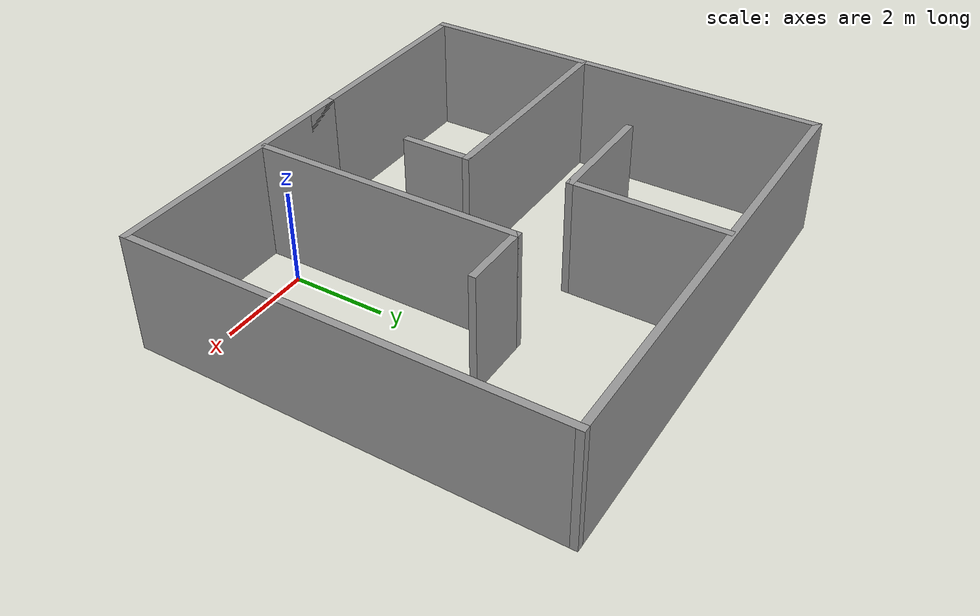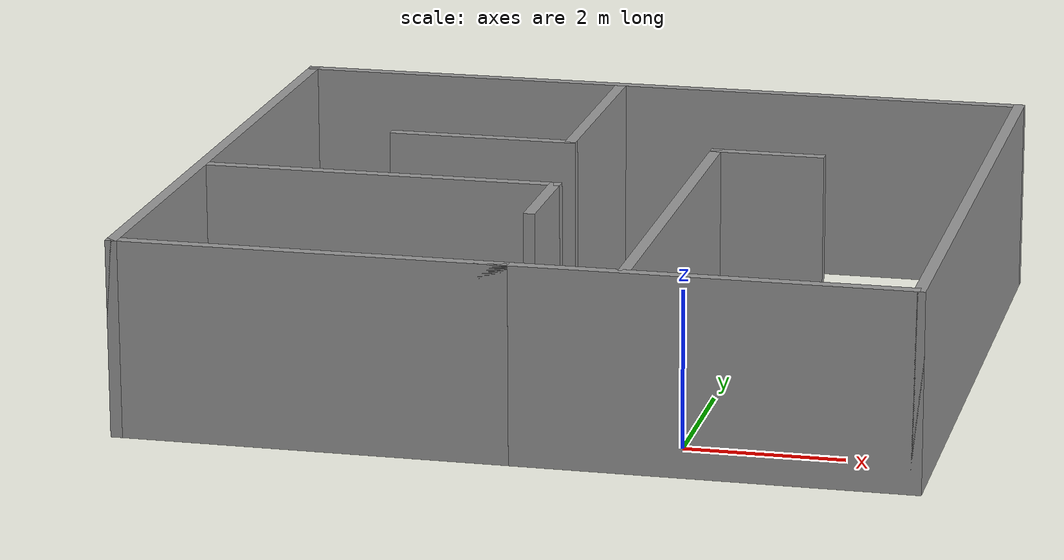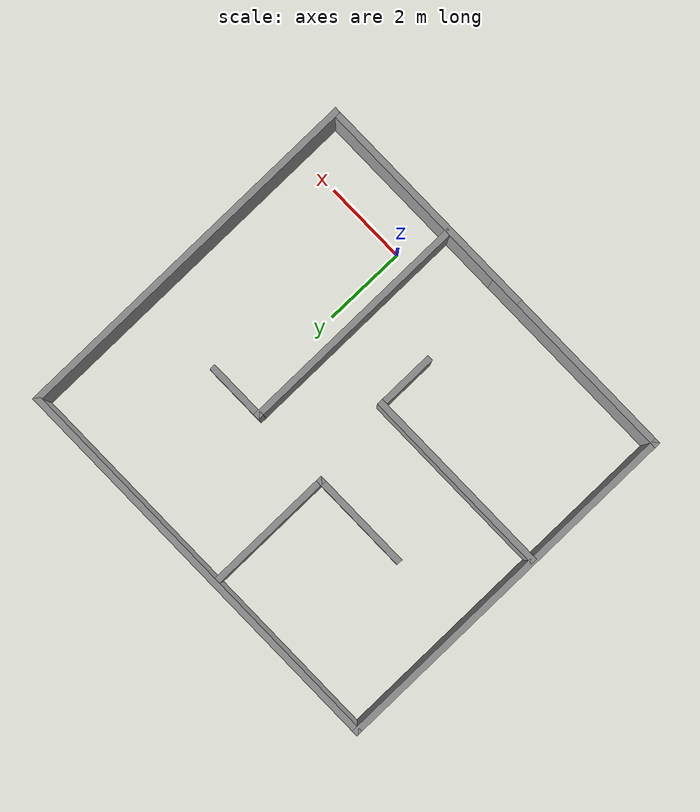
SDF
<?xml version='1.0'?>
<sdf version='1.7'>
  <model name='room'>
    <pose>-1.915 3.405 0 0 -0 0</pose>
    <link name='Wall_0'>
      <collision name='Wall_0_Collision'>
        <geometry>
          <box>
            <size>5.75 0.15 2.5</size>
          </box>
        </geometry>
        <pose>0 0 1.25 0 -0 0</pose>
      </collision>
      <visual name='Wall_0_Visual'>
        <pose>0 0 1.25 0 -0 0</pose>
        <geometry>
          <box>
            <size>5.75 0.15 2.5</size>
          </box>
        </geometry>
        <material>
          <script>
            <uri>file://media/materials/scripts/gazebo.material</uri>
            <name>Gazebo/Grey</name>
          </script>
          <ambient>1 1 1 1</ambient>
        </material>
        <meta>
          <layer>0</layer>
        </meta>
      </visual>
      <pose>2.125 -4.425 0 0 -0 0</pose>
    </link>
    <link name='Wall_1'>
      <collision name='Wall_1_Collision'>
        <geometry>
          <box>
            <size>9 0.15 2.5</size>
          </box>
        </geometry>
        <pose>0 0 1.25 0 -0 0</pose>
      </collision>
      <visual name='Wall_1_Visual'>
        <pose>0 0 1.25 0 -0 0</pose>
        <geometry>
          <box>
            <size>9 0.15 2.5</size>
          </box>
        </geometry>
        <material>
          <script>
            <uri>file://media/materials/scripts/gazebo.material</uri>
            <name>Gazebo/Grey</name>
          </script>
          <ambient>1 1 1 1</ambient>
        </material>
        <meta>
          <layer>0</layer>
        </meta>
      </visual>
      <pose>4.925 -0 0 0 -0 1.5708</pose>
    </link>
    <link name='Wall_10'>
      <collision name='Wall_10_Collision'>
        <geometry>
          <box>
            <size>1.5 0.15 2.5</size>
          </box>
        </geometry>
        <pose>0 0 1.25 0 -0 0</pose>
      </collision>
      <visual name='Wall_10_Visual'>
        <pose>0 0 1.25 0 -0 0</pose>
        <geometry>
          <box>
            <size>1.5 0.15 2.5</size>
          </box>
        </geometry>
        <material>
          <script>
            <uri>file://media/materials/scripts/gazebo.material</uri>
            <name>Gazebo/Grey</name>
          </script>
          <ambient>1 1 1 1</ambient>
        </material>
        <meta>
          <layer>0</layer>
        </meta>
      </visual>
      <pose>-0.274674 -1.47923 0 0 -0 -1.5708</pose>
    </link>
    <link name='Wall_12'>
      <collision name='Wall_12_Collision'>
        <geometry>
          <box>
            <size>5.75 0.15 2.5</size>
          </box>
        </geometry>
        <pose>0 0 1.25 0 -0 0</pose>
      </collision>
      <visual name='Wall_12_Visual'>
        <pose>0 0 1.25 0 -0 0</pose>
        <geometry>
          <box>
            <size>5.75 0.15 2.5</size>
          </box>
        </geometry>
        <material>
          <script>
            <uri>file://media/materials/scripts/gazebo.material</uri>
            <name>Gazebo/Grey</name>
          </script>
          <ambient>1 1 1 1</ambient>
        </material>
        <meta>
          <layer>0</layer>
        </meta>
      </visual>
      <pose>1.39594 -1.54099 0 0 -0 -1.5708</pose>
    </link>
    <link name='Wall_14'>
      <collision name='Wall_14_Collision'>
        <geometry>
          <box>
            <size>1.5 0.15 2.5</size>
          </box>
        </geometry>
        <pose>0 0 1.25 0 -0 0</pose>
      </collision>
      <visual name='Wall_14_Visual'>
        <pose>0 0 1.25 0 -0 0</pose>
        <geometry>
          <box>
            <size>1.5 0.15 2.5</size>
          </box>
        </geometry>
        <material>
          <script>
            <uri>file://media/materials/scripts/gazebo.material</uri>
            <name>Gazebo/Grey</name>
          </script>
          <ambient>1 1 1 1</ambient>
        </material>
        <meta>
          <layer>0</layer>
        </meta>
      </visual>
      <pose>2.07094 1.25901 0 0 -0 0</pose>
    </link>
    <link name='Wall_2'>
      <collision name='Wall_2_Collision'>
        <geometry>
          <box>
            <size>10 0.15 2.5</size>
          </box>
        </geometry>
        <pose>0 0 1.25 0 -0 0</pose>
      </collision>
      <visual name='Wall_2_Visual'>
        <pose>0 0 1.25 0 -0 0</pose>
        <geometry>
          <box>
            <size>10 0.15 2.5</size>
          </box>
        </geometry>
        <material>
          <script>
            <uri>file://media/materials/scripts/gazebo.material</uri>
            <name>Gazebo/Grey</name>
          </script>
          <ambient>1 1 1 1</ambient>
        </material>
        <meta>
          <layer>0</layer>
        </meta>
      </visual>
      <pose>0 4.425 0 0 -0 3.14159</pose>
    </link>
    <link name='Wall_3'>
      <collision name='Wall_3_Collision'>
        <geometry>
          <box>
            <size>9 0.15 2.5</size>
          </box>
        </geometry>
        <pose>0 0 1.25 0 -0 0</pose>
      </collision>
      <visual name='Wall_3_Visual'>
        <pose>0 0 1.25 0 -0 0</pose>
        <geometry>
          <box>
            <size>9 0.15 2.5</size>
          </box>
        </geometry>
        <material>
          <script>
            <uri>file://media/materials/scripts/gazebo.material</uri>
            <name>Gazebo/Grey</name>
          </script>
          <ambient>1 1 1 1</ambient>
        </material>
        <meta>
          <layer>0</layer>
        </meta>
      </visual>
      <pose>-4.925 -0 0 0 -0 -1.5708</pose>
    </link>
    <link name='Wall_4'>
      <collision name='Wall_4_Collision'>
        <geometry>
          <box>
            <size>5 0.15 2.5</size>
          </box>
        </geometry>
        <pose>0 0 1.25 0 -0 0</pose>
      </collision>
      <visual name='Wall_4_Visual'>
        <pose>0 0 1.25 0 -0 0</pose>
        <geometry>
          <box>
            <size>5 0.15 2.5</size>
          </box>
        </geometry>
        <material>
          <script>
            <uri>file://media/materials/scripts/gazebo.material</uri>
            <name>Gazebo/Grey</name>
          </script>
          <ambient>1 1 1 1</ambient>
        </material>
        <meta>
          <layer>0</layer>
        </meta>
      </visual>
      <pose>-2.5 -4.425 0 0 -0 0</pose>
    </link>
    <link name='Wall_6'>
      <collision name='Wall_6_Collision'>
        <geometry>
          <box>
            <size>3.25 0.15 2.5</size>
          </box>
        </geometry>
        <pose>0 0 1.25 0 -0 0</pose>
      </collision>
      <visual name='Wall_6_Visual'>
        <pose>0 0 1.25 0 -0 0</pose>
        <geometry>
          <box>
            <size>3.25 0.15 2.5</size>
          </box>
        </geometry>
        <material>
          <script>
            <uri>file://media/materials/scripts/gazebo.material</uri>
            <name>Gazebo/Grey</name>
          </script>
          <ambient>1 1 1 1</ambient>
        </material>
        <meta>
          <layer>0</layer>
        </meta>
      </visual>
      <pose>-0.545927 2.82409 0 0 -0 -1.5708</pose>
    </link>
    <link name='Wall_7'>
      <collision name='Wall_7_Collision'>
        <geometry>
          <box>
            <size>2.5 0.15 2.5</size>
          </box>
        </geometry>
        <pose>0 0 1.25 0 -0 0</pose>
      </collision>
      <visual name='Wall_7_Visual'>
        <pose>0 0 1.25 0 -0 0</pose>
        <geometry>
          <box>
            <size>2.5 0.15 2.5</size>
          </box>
        </geometry>
        <material>
          <script>
            <uri>file://media/materials/scripts/gazebo.material</uri>
            <name>Gazebo/Grey</name>
          </script>
          <ambient>1 1 1 1</ambient>
        </material>
        <meta>
          <layer>0</layer>
        </meta>
      </visual>
      <pose>-1.72093 1.27409 0 0 -0 3.14159</pose>
    </link>
    <link name='Wall_9'>
      <collision name='Wall_9_Collision'>
        <geometry>
          <box>
            <size>4.75 0.15 2.5</size>
          </box>
        </geometry>
        <pose>0 0 1.25 0 -0 0</pose>
      </collision>
      <visual name='Wall_9_Visual'>
        <pose>0 0 1.25 0 -0 0</pose>
        <geometry>
          <box>
            <size>4.75 0.15 2.5</size>
          </box>
        </geometry>
        <material>
          <script>
            <uri>file://media/materials/scripts/gazebo.material</uri>
            <name>Gazebo/Grey</name>
          </script>
          <ambient>1 1 1 1</ambient>
        </material>
        <meta>
          <layer>0</layer>
        </meta>
      </visual>
      <pose>-2.57467 -0.804225 0 0 -0 0</pose>
    </link>
    <static>1</static>
  </model>
</sdf>
